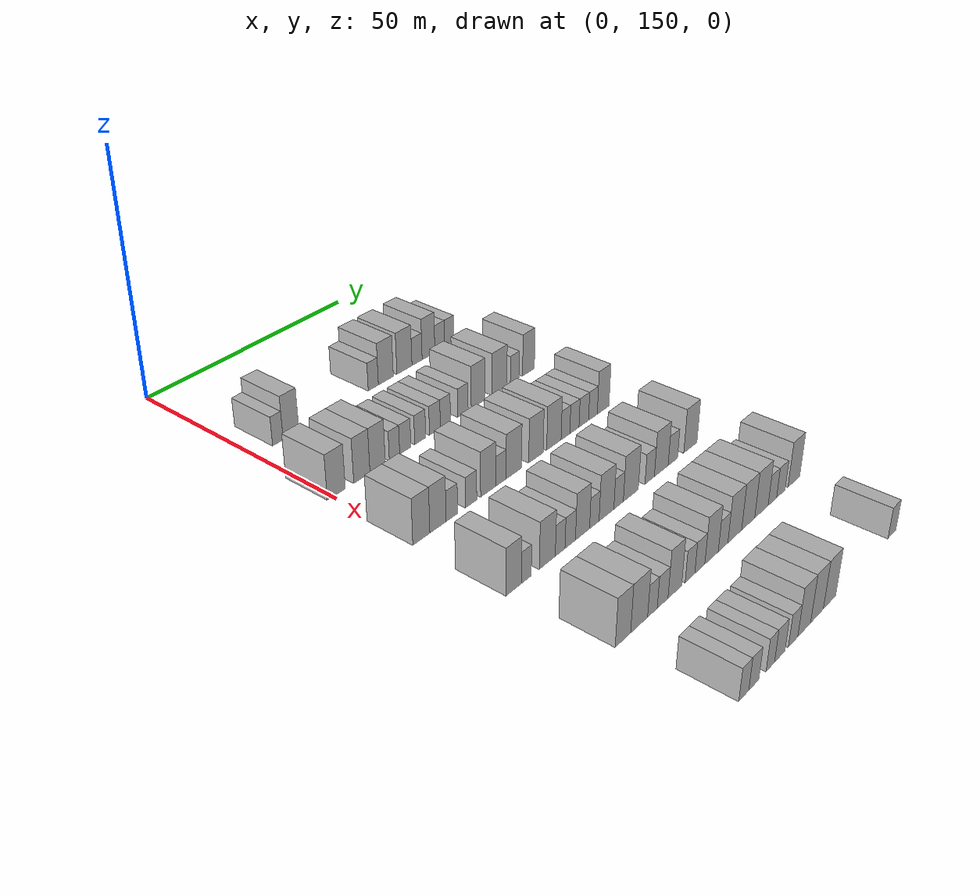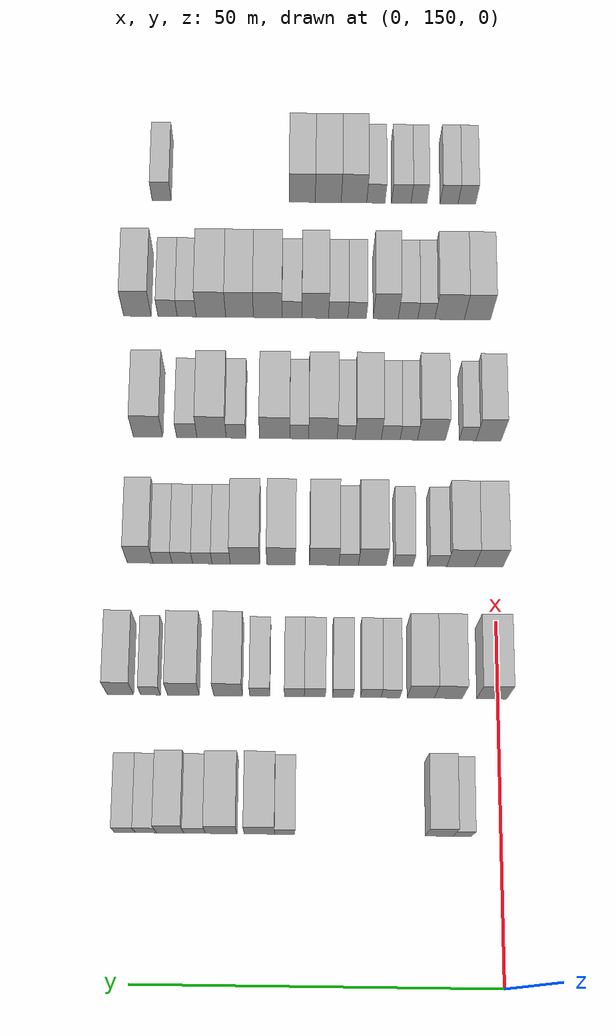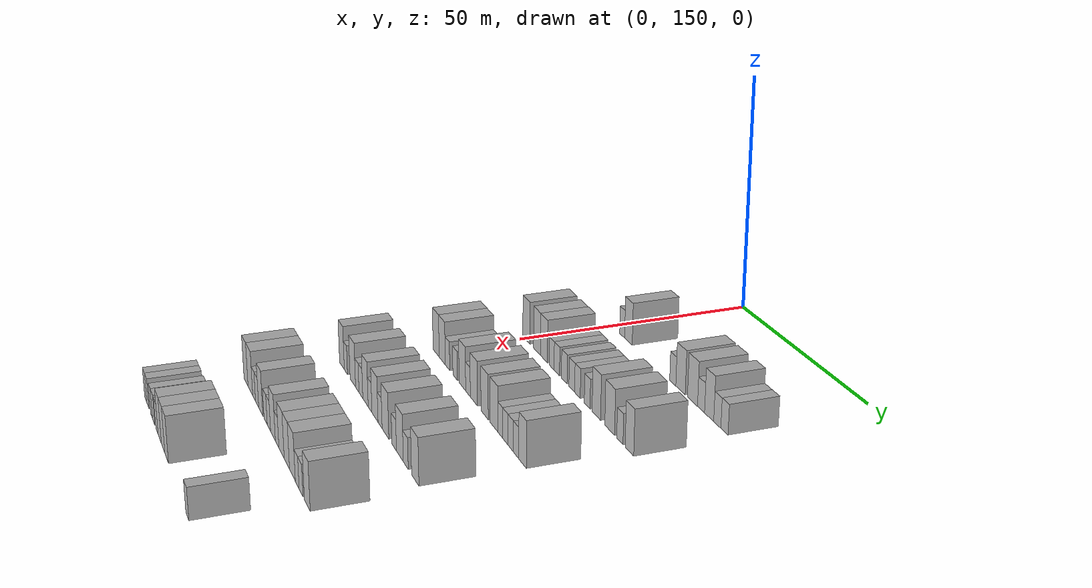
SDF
<sdf version="1.6">
 <world name="default">
  <model name="building_125">
   <static>1</static>
   <pose>25.0000 155.2886 0 0.000000 0.000000 0.000000</pose>
   <link name="link">
    <pose>0 0 3.00 0 0 0</pose>
    <collision name="collision"><geometry><box><size>10.0000 2.5124 6.0000</size></box></geometry></collision>
    <visual name="visual">
     <cast_shadows>0</cast_shadows>
     <geometry><box><size>10.0000 2.5124 6.0000</size></box></geometry>
     <material>
      <script>
       <uri>model://HANNAS_wall/materials/scripts</uri>
       <uri>model://HANNAS_wall/materials/textures</uri>
       <name>vrc/HANNAS_wall</name>
      </script>
     </material>
    </visual>
   </link>
  </model>
  <model name="building_126">
   <static>1</static>
   <pose>25.0000 158.4485 0 0.000000 0.000000 0.000000</pose>
   <link name="link">
    <pose>0 0 4.50 0 0 0</pose>
    <collision name="collision"><geometry><box><size>10.0000 3.8075 9.0000</size></box></geometry></collision>
    <visual name="visual">
     <cast_shadows>0</cast_shadows>
     <geometry><box><size>10.0000 3.8075 9.0000</size></box></geometry>
     <material>
      <script>
       <uri>model://HANNAS_wall/materials/scripts</uri>
       <uri>model://HANNAS_wall/materials/textures</uri>
       <name>vrc/HANNAS_wall</name>
      </script>
     </material>
    </visual>
   </link>
  </model>
  <model name="building_127">
   <static>1</static>
   <pose>25.0000 179.4781 0 0.000000 0.000000 0.000000</pose>
   <link name="link">
    <pose>0 0 3.00 0 0 0</pose>
    <collision name="collision"><geometry><box><size>10.0000 2.7506 6.0000</size></box></geometry></collision>
    <visual name="visual">
     <cast_shadows>0</cast_shadows>
     <geometry><box><size>10.0000 2.7506 6.0000</size></box></geometry>
     <material>
      <script>
       <uri>model://HANNAS_wall/materials/scripts</uri>
       <uri>model://HANNAS_wall/materials/textures</uri>
       <name>vrc/HANNAS_wall</name>
      </script>
     </material>
    </visual>
   </link>
  </model>
  <model name="building_128">
   <static>1</static>
   <pose>25.0000 182.9122 0 0.000000 0.000000 0.000000</pose>
   <link name="link">
    <pose>0 0 4.50 0 0 0</pose>
    <collision name="collision"><geometry><box><size>10.0000 4.1175 9.0000</size></box></geometry></collision>
    <visual name="visual">
     <cast_shadows>0</cast_shadows>
     <geometry><box><size>10.0000 4.1175 9.0000</size></box></geometry>
     <material>
      <script>
       <uri>model://HANNAS_wall/materials/scripts</uri>
       <uri>model://HANNAS_wall/materials/textures</uri>
       <name>vrc/HANNAS_wall</name>
      </script>
     </material>
    </visual>
   </link>
  </model>
  <model name="building_129">
   <static>1</static>
   <pose>25.0000 188.1085 0 0.000000 0.000000 0.000000</pose>
   <link name="link">
    <pose>0 0 4.50 0 0 0</pose>
    <collision name="collision"><geometry><box><size>10.0000 4.2751 9.0000</size></box></geometry></collision>
    <visual name="visual">
     <cast_shadows>0</cast_shadows>
     <geometry><box><size>10.0000 4.2751 9.0000</size></box></geometry>
     <material>
      <script>
       <uri>model://HANNAS_wall/materials/scripts</uri>
       <uri>model://HANNAS_wall/materials/textures</uri>
       <name>vrc/HANNAS_wall</name>
      </script>
     </material>
    </visual>
   </link>
  </model>
  <model name="building_130">
   <static>1</static>
   <pose>25.0000 191.7135 0 0.000000 0.000000 0.000000</pose>
   <link name="link">
    <pose>0 0 3.00 0 0 0</pose>
    <collision name="collision"><geometry><box><size>10.0000 2.9350 6.0000</size></box></geometry></collision>
    <visual name="visual">
     <cast_shadows>0</cast_shadows>
     <geometry><box><size>10.0000 2.9350 6.0000</size></box></geometry>
     <material>
      <script>
       <uri>model://HANNAS_wall/materials/scripts</uri>
       <uri>model://HANNAS_wall/materials/textures</uri>
       <name>vrc/HANNAS_wall</name>
      </script>
     </material>
    </visual>
   </link>
  </model>
  <model name="building_131">
   <static>1</static>
   <pose>25.0000 195.0549 0 0.000000 0.000000 0.000000</pose>
   <link name="link">
    <pose>0 0 4.50 0 0 0</pose>
    <collision name="collision"><geometry><box><size>10.0000 3.7477 9.0000</size></box></geometry></collision>
    <visual name="visual">
     <cast_shadows>0</cast_shadows>
     <geometry><box><size>10.0000 3.7477 9.0000</size></box></geometry>
     <material>
      <script>
       <uri>model://HANNAS_wall/materials/scripts</uri>
       <uri>model://HANNAS_wall/materials/textures</uri>
       <name>vrc/HANNAS_wall</name>
      </script>
     </material>
    </visual>
   </link>
  </model>
  <model name="building_132">
   <static>1</static>
   <pose>25.0000 198.3685 0 0.000000 0.000000 0.000000</pose>
   <link name="link">
    <pose>0 0 3.00 0 0 0</pose>
    <collision name="collision"><geometry><box><size>10.0000 2.8795 6.0000</size></box></geometry></collision>
    <visual name="visual">
     <cast_shadows>0</cast_shadows>
     <geometry><box><size>10.0000 2.8795 6.0000</size></box></geometry>
     <material>
      <script>
       <uri>model://HANNAS_wall/materials/scripts</uri>
       <uri>model://HANNAS_wall/materials/textures</uri>
       <name>vrc/HANNAS_wall</name>
      </script>
     </material>
    </visual>
   </link>
  </model>
  <model name="building_133">
   <static>1</static>
   <pose>25.0000 201.2318 0 0.000000 0.000000 0.000000</pose>
   <link name="link">
    <pose>0 0 3.00 0 0 0</pose>
    <collision name="collision"><geometry><box><size>10.0000 2.8471 6.0000</size></box></geometry></collision>
    <visual name="visual">
     <cast_shadows>0</cast_shadows>
     <geometry><box><size>10.0000 2.8471 6.0000</size></box></geometry>
     <material>
      <script>
       <uri>model://HANNAS_wall/materials/scripts</uri>
       <uri>model://HANNAS_wall/materials/textures</uri>
       <name>vrc/HANNAS_wall</name>
      </script>
     </material>
    </visual>
   </link>
  </model>
  <model name="building_292">
   <static>1</static>
   <pose>44.0000 150.8843 0 0.000000 0.000000 0.000000</pose>
   <link name="link">
    <pose>0 0 4.50 0 0 0</pose>
    <collision name="collision"><geometry><box><size>10.0000 4.1889 9.0000</size></box></geometry></collision>
    <visual name="visual">
     <cast_shadows>0</cast_shadows>
     <geometry><box><size>10.0000 4.1889 9.0000</size></box></geometry>
     <material>
      <script>
       <uri>model://HANNAS_wall/materials/scripts</uri>
       <uri>model://HANNAS_wall/materials/textures</uri>
       <name>vrc/HANNAS_wall</name>
      </script>
     </material>
    </visual>
   </link>
  </model>
  <model name="building_293">
   <static>1</static>
   <pose>44.0000 156.9351 0 0.000000 0.000000 0.000000</pose>
   <link name="link">
    <pose>0 0 4.50 0 0 0</pose>
    <collision name="collision"><geometry><box><size>10.0000 3.9126 9.0000</size></box></geometry></collision>
    <visual name="visual">
     <cast_shadows>0</cast_shadows>
     <geometry><box><size>10.0000 3.9126 9.0000</size></box></geometry>
     <material>
      <script>
       <uri>model://HANNAS_wall/materials/scripts</uri>
       <uri>model://HANNAS_wall/materials/textures</uri>
       <name>vrc/HANNAS_wall</name>
      </script>
     </material>
    </visual>
   </link>
  </model>
  <model name="building_294">
   <static>1</static>
   <pose>44.0000 160.7863 0 0.000000 0.000000 0.000000</pose>
   <link name="link">
    <pose>0 0 4.50 0 0 0</pose>
    <collision name="collision"><geometry><box><size>10.0000 3.7898 9.0000</size></box></geometry></collision>
    <visual name="visual">
     <cast_shadows>0</cast_shadows>
     <geometry><box><size>10.0000 3.7898 9.0000</size></box></geometry>
     <material>
      <script>
       <uri>model://HANNAS_wall/materials/scripts</uri>
       <uri>model://HANNAS_wall/materials/textures</uri>
       <name>vrc/HANNAS_wall</name>
      </script>
     </material>
    </visual>
   </link>
  </model>
  <model name="building_295">
   <static>1</static>
   <pose>44.0000 164.9924 0 0.000000 0.000000 0.000000</pose>
   <link name="link">
    <pose>0 0 3.00 0 0 0</pose>
    <collision name="collision"><geometry><box><size>10.0000 2.6225 6.0000</size></box></geometry></collision>
    <visual name="visual">
     <cast_shadows>0</cast_shadows>
     <geometry><box><size>10.0000 2.6225 6.0000</size></box></geometry>
     <material>
      <script>
       <uri>model://HANNAS_wall/materials/scripts</uri>
       <uri>model://HANNAS_wall/materials/textures</uri>
       <name>vrc/HANNAS_wall</name>
      </script>
     </material>
    </visual>
   </link>
  </model>
  <model name="building_296">
   <static>1</static>
   <pose>44.0000 167.7428 0 0.000000 0.000000 0.000000</pose>
   <link name="link">
    <pose>0 0 3.00 0 0 0</pose>
    <collision name="collision"><geometry><box><size>10.0000 2.8782 6.0000</size></box></geometry></collision>
    <visual name="visual">
     <cast_shadows>0</cast_shadows>
     <geometry><box><size>10.0000 2.8782 6.0000</size></box></geometry>
     <material>
      <script>
       <uri>model://HANNAS_wall/materials/scripts</uri>
       <uri>model://HANNAS_wall/materials/textures</uri>
       <name>vrc/HANNAS_wall</name>
      </script>
     </material>
    </visual>
   </link>
  </model>
  <model name="building_297">
   <static>1</static>
   <pose>44.0000 171.6284 0 0.000000 0.000000 0.000000</pose>
   <link name="link">
    <pose>0 0 3.00 0 0 0</pose>
    <collision name="collision"><geometry><box><size>10.0000 2.8931 6.0000</size></box></geometry></collision>
    <visual name="visual">
     <cast_shadows>0</cast_shadows>
     <geometry><box><size>10.0000 2.8931 6.0000</size></box></geometry>
     <material>
      <script>
       <uri>model://HANNAS_wall/materials/scripts</uri>
       <uri>model://HANNAS_wall/materials/textures</uri>
       <name>vrc/HANNAS_wall</name>
      </script>
     </material>
    </visual>
   </link>
  </model>
  <model name="building_298">
   <static>1</static>
   <pose>44.0000 175.5348 0 0.000000 0.000000 0.000000</pose>
   <link name="link">
    <pose>0 0 3.00 0 0 0</pose>
    <collision name="collision"><geometry><box><size>10.0000 2.9196 6.0000</size></box></geometry></collision>
    <visual name="visual">
     <cast_shadows>0</cast_shadows>
     <geometry><box><size>10.0000 2.9196 6.0000</size></box></geometry>
     <material>
      <script>
       <uri>model://HANNAS_wall/materials/scripts</uri>
       <uri>model://HANNAS_wall/materials/textures</uri>
       <name>vrc/HANNAS_wall</name>
      </script>
     </material>
    </visual>
   </link>
  </model>
  <model name="building_299">
   <static>1</static>
   <pose>44.0000 178.3773 0 0.000000 0.000000 0.000000</pose>
   <link name="link">
    <pose>0 0 3.00 0 0 0</pose>
    <collision name="collision"><geometry><box><size>10.0000 2.7654 6.0000</size></box></geometry></collision>
    <visual name="visual">
     <cast_shadows>0</cast_shadows>
     <geometry><box><size>10.0000 2.7654 6.0000</size></box></geometry>
     <material>
      <script>
       <uri>model://HANNAS_wall/materials/scripts</uri>
       <uri>model://HANNAS_wall/materials/textures</uri>
       <name>vrc/HANNAS_wall</name>
      </script>
     </material>
    </visual>
   </link>
  </model>
  <model name="building_300">
   <static>1</static>
   <pose>44.0000 183.1663 0 0.000000 0.000000 0.000000</pose>
   <link name="link">
    <pose>0 0 3.00 0 0 0</pose>
    <collision name="collision"><geometry><box><size>10.0000 2.8126 6.0000</size></box></geometry></collision>
    <visual name="visual">
     <cast_shadows>0</cast_shadows>
     <geometry><box><size>10.0000 2.8126 6.0000</size></box></geometry>
     <material>
      <script>
       <uri>model://HANNAS_wall/materials/scripts</uri>
       <uri>model://HANNAS_wall/materials/textures</uri>
       <name>vrc/HANNAS_wall</name>
      </script>
     </material>
    </visual>
   </link>
  </model>
  <model name="building_301">
   <static>1</static>
   <pose>44.0000 187.5790 0 0.000000 0.000000 0.000000</pose>
   <link name="link">
    <pose>0 0 4.50 0 0 0</pose>
    <collision name="collision"><geometry><box><size>10.0000 4.0128 9.0000</size></box></geometry></collision>
    <visual name="visual">
     <cast_shadows>0</cast_shadows>
     <geometry><box><size>10.0000 4.0128 9.0000</size></box></geometry>
     <material>
      <script>
       <uri>model://HANNAS_wall/materials/scripts</uri>
       <uri>model://HANNAS_wall/materials/textures</uri>
       <name>vrc/HANNAS_wall</name>
      </script>
     </material>
    </visual>
   </link>
  </model>
  <model name="building_302">
   <static>1</static>
   <pose>44.0000 193.7998 0 0.000000 0.000000 0.000000</pose>
   <link name="link">
    <pose>0 0 4.50 0 0 0</pose>
    <collision name="collision"><geometry><box><size>10.0000 4.4289 9.0000</size></box></geometry></collision>
    <visual name="visual">
     <cast_shadows>0</cast_shadows>
     <geometry><box><size>10.0000 4.4289 9.0000</size></box></geometry>
     <material>
      <script>
       <uri>model://HANNAS_wall/materials/scripts</uri>
       <uri>model://HANNAS_wall/materials/textures</uri>
       <name>vrc/HANNAS_wall</name>
      </script>
     </material>
    </visual>
   </link>
  </model>
  <model name="building_303">
   <static>1</static>
   <pose>44.0000 198.3880 0 0.000000 0.000000 0.000000</pose>
   <link name="link">
    <pose>0 0 3.00 0 0 0</pose>
    <collision name="collision"><geometry><box><size>10.0000 2.7474 6.0000</size></box></geometry></collision>
    <visual name="visual">
     <cast_shadows>0</cast_shadows>
     <geometry><box><size>10.0000 2.7474 6.0000</size></box></geometry>
     <material>
      <script>
       <uri>model://HANNAS_wall/materials/scripts</uri>
       <uri>model://HANNAS_wall/materials/textures</uri>
       <name>vrc/HANNAS_wall</name>
      </script>
     </material>
    </visual>
   </link>
  </model>
  <model name="building_304">
   <static>1</static>
   <pose>44.0000 202.6028 0 0.000000 0.000000 0.000000</pose>
   <link name="link">
    <pose>0 0 4.50 0 0 0</pose>
    <collision name="collision"><geometry><box><size>10.0000 3.6822 9.0000</size></box></geometry></collision>
    <visual name="visual">
     <cast_shadows>0</cast_shadows>
     <geometry><box><size>10.0000 3.6822 9.0000</size></box></geometry>
     <material>
      <script>
       <uri>model://HANNAS_wall/materials/scripts</uri>
       <uri>model://HANNAS_wall/materials/textures</uri>
       <name>vrc/HANNAS_wall</name>
      </script>
     </material>
    </visual>
   </link>
  </model>
  <model name="building_465">
   <static>1</static>
   <pose>63.0000 150.8808 0 0.000000 0.000000 0.000000</pose>
   <link name="link">
    <pose>0 0 4.50 0 0 0</pose>
    <collision name="collision"><geometry><box><size>10.0000 4.0199 9.0000</size></box></geometry></collision>
    <visual name="visual">
     <cast_shadows>0</cast_shadows>
     <geometry><box><size>10.0000 4.0199 9.0000</size></box></geometry>
     <material>
      <script>
       <uri>model://HANNAS_wall/materials/scripts</uri>
       <uri>model://HANNAS_wall/materials/textures</uri>
       <name>vrc/HANNAS_wall</name>
      </script>
     </material>
    </visual>
   </link>
  </model>
  <model name="building_466">
   <static>1</static>
   <pose>63.0000 154.8594 0 0.000000 0.000000 0.000000</pose>
   <link name="link">
    <pose>0 0 4.50 0 0 0</pose>
    <collision name="collision"><geometry><box><size>10.0000 3.9374 9.0000</size></box></geometry></collision>
    <visual name="visual">
     <cast_shadows>0</cast_shadows>
     <geometry><box><size>10.0000 3.9374 9.0000</size></box></geometry>
     <material>
      <script>
       <uri>model://HANNAS_wall/materials/scripts</uri>
       <uri>model://HANNAS_wall/materials/textures</uri>
       <name>vrc/HANNAS_wall</name>
      </script>
     </material>
    </visual>
   </link>
  </model>
  <model name="building_467">
   <static>1</static>
   <pose>63.0000 158.2430 0 0.000000 0.000000 0.000000</pose>
   <link name="link">
    <pose>0 0 3.00 0 0 0</pose>
    <collision name="collision"><geometry><box><size>10.0000 2.8297 6.0000</size></box></geometry></collision>
    <visual name="visual">
     <cast_shadows>0</cast_shadows>
     <geometry><box><size>10.0000 2.8297 6.0000</size></box></geometry>
     <material>
      <script>
       <uri>model://HANNAS_wall/materials/scripts</uri>
       <uri>model://HANNAS_wall/materials/textures</uri>
       <name>vrc/HANNAS_wall</name>
      </script>
     </material>
    </visual>
   </link>
  </model>
  <model name="building_468">
   <static>1</static>
   <pose>63.0000 163.0838 0 0.000000 0.000000 0.000000</pose>
   <link name="link">
    <pose>0 0 3.00 0 0 0</pose>
    <collision name="collision"><geometry><box><size>10.0000 2.8520 6.0000</size></box></geometry></collision>
    <visual name="visual">
     <cast_shadows>0</cast_shadows>
     <geometry><box><size>10.0000 2.8520 6.0000</size></box></geometry>
     <material>
      <script>
       <uri>model://HANNAS_wall/materials/scripts</uri>
       <uri>model://HANNAS_wall/materials/textures</uri>
       <name>vrc/HANNAS_wall</name>
      </script>
     </material>
    </visual>
   </link>
  </model>
  <model name="building_469">
   <static>1</static>
   <pose>63.0000 167.4831 0 0.000000 0.000000 0.000000</pose>
   <link name="link">
    <pose>0 0 4.50 0 0 0</pose>
    <collision name="collision"><geometry><box><size>10.0000 3.9466 9.0000</size></box></geometry></collision>
    <visual name="visual">
     <cast_shadows>0</cast_shadows>
     <geometry><box><size>10.0000 3.9466 9.0000</size></box></geometry>
     <material>
      <script>
       <uri>model://HANNAS_wall/materials/scripts</uri>
       <uri>model://HANNAS_wall/materials/textures</uri>
       <name>vrc/HANNAS_wall</name>
      </script>
     </material>
    </visual>
   </link>
  </model>
  <model name="building_470">
   <static>1</static>
   <pose>63.0000 170.8446 0 0.000000 0.000000 0.000000</pose>
   <link name="link">
    <pose>0 0 3.00 0 0 0</pose>
    <collision name="collision"><geometry><box><size>10.0000 2.7764 6.0000</size></box></geometry></collision>
    <visual name="visual">
     <cast_shadows>0</cast_shadows>
     <geometry><box><size>10.0000 2.7764 6.0000</size></box></geometry>
     <material>
      <script>
       <uri>model://HANNAS_wall/materials/scripts</uri>
       <uri>model://HANNAS_wall/materials/textures</uri>
       <name>vrc/HANNAS_wall</name>
      </script>
     </material>
    </visual>
   </link>
  </model>
  <model name="building_471">
   <static>1</static>
   <pose>63.0000 174.3244 0 0.000000 0.000000 0.000000</pose>
   <link name="link">
    <pose>0 0 4.50 0 0 0</pose>
    <collision name="collision"><geometry><box><size>10.0000 4.1831 9.0000</size></box></geometry></collision>
    <visual name="visual">
     <cast_shadows>0</cast_shadows>
     <geometry><box><size>10.0000 4.1831 9.0000</size></box></geometry>
     <material>
      <script>
       <uri>model://HANNAS_wall/materials/scripts</uri>
       <uri>model://HANNAS_wall/materials/textures</uri>
       <name>vrc/HANNAS_wall</name>
      </script>
     </material>
    </visual>
   </link>
  </model>
  <model name="building_472">
   <static>1</static>
   <pose>63.0000 180.4540 0 0.000000 0.000000 0.000000</pose>
   <link name="link">
    <pose>0 0 4.50 0 0 0</pose>
    <collision name="collision"><geometry><box><size>10.0000 4.0761 9.0000</size></box></geometry></collision>
    <visual name="visual">
     <cast_shadows>0</cast_shadows>
     <geometry><box><size>10.0000 4.0761 9.0000</size></box></geometry>
     <material>
      <script>
       <uri>model://HANNAS_wall/materials/scripts</uri>
       <uri>model://HANNAS_wall/materials/textures</uri>
       <name>vrc/HANNAS_wall</name>
      </script>
     </material>
    </visual>
   </link>
  </model>
  <model name="building_473">
   <static>1</static>
   <pose>63.0000 185.5911 0 0.000000 0.000000 0.000000</pose>
   <link name="link">
    <pose>0 0 4.50 0 0 0</pose>
    <collision name="collision"><geometry><box><size>10.0000 4.1981 9.0000</size></box></geometry></collision>
    <visual name="visual">
     <cast_shadows>0</cast_shadows>
     <geometry><box><size>10.0000 4.1981 9.0000</size></box></geometry>
     <material>
      <script>
       <uri>model://HANNAS_wall/materials/scripts</uri>
       <uri>model://HANNAS_wall/materials/textures</uri>
       <name>vrc/HANNAS_wall</name>
      </script>
     </material>
    </visual>
   </link>
  </model>
  <model name="building_474">
   <static>1</static>
   <pose>63.0000 188.9904 0 0.000000 0.000000 0.000000</pose>
   <link name="link">
    <pose>0 0 3.00 0 0 0</pose>
    <collision name="collision"><geometry><box><size>10.0000 2.6004 6.0000</size></box></geometry></collision>
    <visual name="visual">
     <cast_shadows>0</cast_shadows>
     <geometry><box><size>10.0000 2.6004 6.0000</size></box></geometry>
     <material>
      <script>
       <uri>model://HANNAS_wall/materials/scripts</uri>
       <uri>model://HANNAS_wall/materials/textures</uri>
       <name>vrc/HANNAS_wall</name>
      </script>
     </material>
    </visual>
   </link>
  </model>
  <model name="building_475">
   <static>1</static>
   <pose>63.0000 191.6744 0 0.000000 0.000000 0.000000</pose>
   <link name="link">
    <pose>0 0 3.00 0 0 0</pose>
    <collision name="collision"><geometry><box><size>10.0000 2.7675 6.0000</size></box></geometry></collision>
    <visual name="visual">
     <cast_shadows>0</cast_shadows>
     <geometry><box><size>10.0000 2.7675 6.0000</size></box></geometry>
     <material>
      <script>
       <uri>model://HANNAS_wall/materials/scripts</uri>
       <uri>model://HANNAS_wall/materials/textures</uri>
       <name>vrc/HANNAS_wall</name>
      </script>
     </material>
    </visual>
   </link>
  </model>
  <model name="building_476">
   <static>1</static>
   <pose>63.0000 194.5144 0 0.000000 0.000000 0.000000</pose>
   <link name="link">
    <pose>0 0 3.00 0 0 0</pose>
    <collision name="collision"><geometry><box><size>10.0000 2.9126 6.0000</size></box></geometry></collision>
    <visual name="visual">
     <cast_shadows>0</cast_shadows>
     <geometry><box><size>10.0000 2.9126 6.0000</size></box></geometry>
     <material>
      <script>
       <uri>model://HANNAS_wall/materials/scripts</uri>
       <uri>model://HANNAS_wall/materials/textures</uri>
       <name>vrc/HANNAS_wall</name>
      </script>
     </material>
    </visual>
   </link>
  </model>
  <model name="building_477">
   <static>1</static>
   <pose>63.0000 197.3255 0 0.000000 0.000000 0.000000</pose>
   <link name="link">
    <pose>0 0 3.00 0 0 0</pose>
    <collision name="collision"><geometry><box><size>10.0000 2.7097 6.0000</size></box></geometry></collision>
    <visual name="visual">
     <cast_shadows>0</cast_shadows>
     <geometry><box><size>10.0000 2.7097 6.0000</size></box></geometry>
     <material>
      <script>
       <uri>model://HANNAS_wall/materials/scripts</uri>
       <uri>model://HANNAS_wall/materials/textures</uri>
       <name>vrc/HANNAS_wall</name>
      </script>
     </material>
    </visual>
   </link>
  </model>
  <model name="building_478">
   <static>1</static>
   <pose>63.0000 200.5234 0 0.000000 0.000000 0.000000</pose>
   <link name="link">
    <pose>0 0 4.50 0 0 0</pose>
    <collision name="collision"><geometry><box><size>10.0000 3.6861 9.0000</size></box></geometry></collision>
    <visual name="visual">
     <cast_shadows>0</cast_shadows>
     <geometry><box><size>10.0000 3.6861 9.0000</size></box></geometry>
     <material>
      <script>
       <uri>model://HANNAS_wall/materials/scripts</uri>
       <uri>model://HANNAS_wall/materials/textures</uri>
       <name>vrc/HANNAS_wall</name>
      </script>
     </material>
    </visual>
   </link>
  </model>
  <model name="building_648">
   <static>1</static>
   <pose>82.0000 150.5078 0 0.000000 0.000000 0.000000</pose>
   <link name="link">
    <pose>0 0 4.50 0 0 0</pose>
    <collision name="collision"><geometry><box><size>10.0000 3.6606 9.0000</size></box></geometry></collision>
    <visual name="visual">
     <cast_shadows>0</cast_shadows>
     <geometry><box><size>10.0000 3.6606 9.0000</size></box></geometry>
     <material>
      <script>
       <uri>model://HANNAS_wall/materials/scripts</uri>
       <uri>model://HANNAS_wall/materials/textures</uri>
       <name>vrc/HANNAS_wall</name>
      </script>
     </material>
    </visual>
   </link>
  </model>
  <model name="building_649">
   <static>1</static>
   <pose>82.0000 153.5602 0 0.000000 0.000000 0.000000</pose>
   <link name="link">
    <pose>0 0 3.00 0 0 0</pose>
    <collision name="collision"><geometry><box><size>10.0000 2.4443 6.0000</size></box></geometry></collision>
    <visual name="visual">
     <cast_shadows>0</cast_shadows>
     <geometry><box><size>10.0000 2.4443 6.0000</size></box></geometry>
     <material>
      <script>
       <uri>model://HANNAS_wall/materials/scripts</uri>
       <uri>model://HANNAS_wall/materials/textures</uri>
       <name>vrc/HANNAS_wall</name>
      </script>
     </material>
    </visual>
   </link>
  </model>
  <model name="building_650">
   <static>1</static>
   <pose>82.0000 158.8194 0 0.000000 0.000000 0.000000</pose>
   <link name="link">
    <pose>0 0 4.50 0 0 0</pose>
    <collision name="collision"><geometry><box><size>10.0000 4.0742 9.0000</size></box></geometry></collision>
    <visual name="visual">
     <cast_shadows>0</cast_shadows>
     <geometry><box><size>10.0000 4.0742 9.0000</size></box></geometry>
     <material>
      <script>
       <uri>model://HANNAS_wall/materials/scripts</uri>
       <uri>model://HANNAS_wall/materials/textures</uri>
       <name>vrc/HANNAS_wall</name>
      </script>
     </material>
    </visual>
   </link>
  </model>
  <model name="building_651">
   <static>1</static>
   <pose>82.0000 162.1157 0 0.000000 0.000000 0.000000</pose>
   <link name="link">
    <pose>0 0 3.00 0 0 0</pose>
    <collision name="collision"><geometry><box><size>10.0000 2.5183 6.0000</size></box></geometry></collision>
    <visual name="visual">
     <cast_shadows>0</cast_shadows>
     <geometry><box><size>10.0000 2.5183 6.0000</size></box></geometry>
     <material>
      <script>
       <uri>model://HANNAS_wall/materials/scripts</uri>
       <uri>model://HANNAS_wall/materials/textures</uri>
       <name>vrc/HANNAS_wall</name>
      </script>
     </material>
    </visual>
   </link>
  </model>
  <model name="building_652">
   <static>1</static>
   <pose>82.0000 164.7544 0 0.000000 0.000000 0.000000</pose>
   <link name="link">
    <pose>0 0 3.00 0 0 0</pose>
    <collision name="collision"><geometry><box><size>10.0000 2.7592 6.0000</size></box></geometry></collision>
    <visual name="visual">
     <cast_shadows>0</cast_shadows>
     <geometry><box><size>10.0000 2.7592 6.0000</size></box></geometry>
     <material>
      <script>
       <uri>model://HANNAS_wall/materials/scripts</uri>
       <uri>model://HANNAS_wall/materials/textures</uri>
       <name>vrc/HANNAS_wall</name>
      </script>
     </material>
    </visual>
   </link>
  </model>
  <model name="building_653">
   <static>1</static>
   <pose>82.0000 168.0363 0 0.000000 0.000000 0.000000</pose>
   <link name="link">
    <pose>0 0 4.50 0 0 0</pose>
    <collision name="collision"><geometry><box><size>10.0000 3.8046 9.0000</size></box></geometry></collision>
    <visual name="visual">
     <cast_shadows>0</cast_shadows>
     <geometry><box><size>10.0000 3.8046 9.0000</size></box></geometry>
     <material>
      <script>
       <uri>model://HANNAS_wall/materials/scripts</uri>
       <uri>model://HANNAS_wall/materials/textures</uri>
       <name>vrc/HANNAS_wall</name>
      </script>
     </material>
    </visual>
   </link>
  </model>
  <model name="building_654">
   <static>1</static>
   <pose>82.0000 171.2433 0 0.000000 0.000000 0.000000</pose>
   <link name="link">
    <pose>0 0 3.00 0 0 0</pose>
    <collision name="collision"><geometry><box><size>10.0000 2.6094 6.0000</size></box></geometry></collision>
    <visual name="visual">
     <cast_shadows>0</cast_shadows>
     <geometry><box><size>10.0000 2.6094 6.0000</size></box></geometry>
     <material>
      <script>
       <uri>model://HANNAS_wall/materials/scripts</uri>
       <uri>model://HANNAS_wall/materials/textures</uri>
       <name>vrc/HANNAS_wall</name>
      </script>
     </material>
    </visual>
   </link>
  </model>
  <model name="building_655">
   <static>1</static>
   <pose>82.0000 174.6304 0 0.000000 0.000000 0.000000</pose>
   <link name="link">
    <pose>0 0 4.50 0 0 0</pose>
    <collision name="collision"><geometry><box><size>10.0000 4.1648 9.0000</size></box></geometry></collision>
    <visual name="visual">
     <cast_shadows>0</cast_shadows>
     <geometry><box><size>10.0000 4.1648 9.0000</size></box></geometry>
     <material>
      <script>
       <uri>model://HANNAS_wall/materials/scripts</uri>
       <uri>model://HANNAS_wall/materials/textures</uri>
       <name>vrc/HANNAS_wall</name>
      </script>
     </material>
    </visual>
   </link>
  </model>
  <model name="building_656">
   <static>1</static>
   <pose>82.0000 178.0759 0 0.000000 0.000000 0.000000</pose>
   <link name="link">
    <pose>0 0 3.00 0 0 0</pose>
    <collision name="collision"><geometry><box><size>10.0000 2.7262 6.0000</size></box></geometry></collision>
    <visual name="visual">
     <cast_shadows>0</cast_shadows>
     <geometry><box><size>10.0000 2.7262 6.0000</size></box></geometry>
     <material>
      <script>
       <uri>model://HANNAS_wall/materials/scripts</uri>
       <uri>model://HANNAS_wall/materials/textures</uri>
       <name>vrc/HANNAS_wall</name>
      </script>
     </material>
    </visual>
   </link>
  </model>
  <model name="building_657">
   <static>1</static>
   <pose>82.0000 181.6300 0 0.000000 0.000000 0.000000</pose>
   <link name="link">
    <pose>0 0 4.50 0 0 0</pose>
    <collision name="collision"><geometry><box><size>10.0000 4.3820 9.0000</size></box></geometry></collision>
    <visual name="visual">
     <cast_shadows>0</cast_shadows>
     <geometry><box><size>10.0000 4.3820 9.0000</size></box></geometry>
     <material>
      <script>
       <uri>model://HANNAS_wall/materials/scripts</uri>
       <uri>model://HANNAS_wall/materials/textures</uri>
       <name>vrc/HANNAS_wall</name>
      </script>
     </material>
    </visual>
   </link>
  </model>
  <model name="building_658">
   <static>1</static>
   <pose>82.0000 187.2487 0 0.000000 0.000000 0.000000</pose>
   <link name="link">
    <pose>0 0 3.00 0 0 0</pose>
    <collision name="collision"><geometry><box><size>10.0000 2.8555 6.0000</size></box></geometry></collision>
    <visual name="visual">
     <cast_shadows>0</cast_shadows>
     <geometry><box><size>10.0000 2.8555 6.0000</size></box></geometry>
     <material>
      <script>
       <uri>model://HANNAS_wall/materials/scripts</uri>
       <uri>model://HANNAS_wall/materials/textures</uri>
       <name>vrc/HANNAS_wall</name>
      </script>
     </material>
    </visual>
   </link>
  </model>
  <model name="building_659">
   <static>1</static>
   <pose>82.0000 190.8111 0 0.000000 0.000000 0.000000</pose>
   <link name="link">
    <pose>0 0 4.50 0 0 0</pose>
    <collision name="collision"><geometry><box><size>10.0000 4.2693 9.0000</size></box></geometry></collision>
    <visual name="visual">
     <cast_shadows>0</cast_shadows>
     <geometry><box><size>10.0000 4.2693 9.0000</size></box></geometry>
     <material>
      <script>
       <uri>model://HANNAS_wall/materials/scripts</uri>
       <uri>model://HANNAS_wall/materials/textures</uri>
       <name>vrc/HANNAS_wall</name>
      </script>
     </material>
    </visual>
   </link>
  </model>
  <model name="building_660">
   <static>1</static>
   <pose>82.0000 194.4278 0 0.000000 0.000000 0.000000</pose>
   <link name="link">
    <pose>0 0 3.00 0 0 0</pose>
    <collision name="collision"><geometry><box><size>10.0000 2.9641 6.0000</size></box></geometry></collision>
    <visual name="visual">
     <cast_shadows>0</cast_shadows>
     <geometry><box><size>10.0000 2.9641 6.0000</size></box></geometry>
     <material>
      <script>
       <uri>model://HANNAS_wall/materials/scripts</uri>
       <uri>model://HANNAS_wall/materials/textures</uri>
       <name>vrc/HANNAS_wall</name>
      </script>
     </material>
    </visual>
   </link>
  </model>
  <model name="building_661">
   <static>1</static>
   <pose>82.0000 200.0559 0 0.000000 0.000000 0.000000</pose>
   <link name="link">
    <pose>0 0 4.50 0 0 0</pose>
    <collision name="collision"><geometry><box><size>10.0000 4.2922 9.0000</size></box></geometry></collision>
    <visual name="visual">
     <cast_shadows>0</cast_shadows>
     <geometry><box><size>10.0000 4.2922 9.0000</size></box></geometry>
     <material>
      <script>
       <uri>model://HANNAS_wall/materials/scripts</uri>
       <uri>model://HANNAS_wall/materials/textures</uri>
       <name>vrc/HANNAS_wall</name>
      </script>
     </material>
    </visual>
   </link>
  </model>
  <model name="building_814">
   <static>1</static>
   <pose>101.0000 151.7543 0 0.000000 0.000000 0.000000</pose>
   <link name="link">
    <pose>0 0 4.50 0 0 0</pose>
    <collision name="collision"><geometry><box><size>10.0000 3.8692 9.0000</size></box></geometry></collision>
    <visual name="visual">
     <cast_shadows>0</cast_shadows>
     <geometry><box><size>10.0000 3.8692 9.0000</size></box></geometry>
     <material>
      <script>
       <uri>model://HANNAS_wall/materials/scripts</uri>
       <uri>model://HANNAS_wall/materials/textures</uri>
       <name>vrc/HANNAS_wall</name>
      </script>
     </material>
    </visual>
   </link>
  </model>
  <model name="building_815">
   <static>1</static>
   <pose>101.0000 155.8860 0 0.000000 0.000000 0.000000</pose>
   <link name="link">
    <pose>0 0 4.50 0 0 0</pose>
    <collision name="collision"><geometry><box><size>10.0000 4.3941 9.0000</size></box></geometry></collision>
    <visual name="visual">
     <cast_shadows>0</cast_shadows>
     <geometry><box><size>10.0000 4.3941 9.0000</size></box></geometry>
     <material>
      <script>
       <uri>model://HANNAS_wall/materials/scripts</uri>
       <uri>model://HANNAS_wall/materials/textures</uri>
       <name>vrc/HANNAS_wall</name>
      </script>
     </material>
    </visual>
   </link>
  </model>
  <model name="building_816">
   <static>1</static>
   <pose>101.0000 159.3558 0 0.000000 0.000000 0.000000</pose>
   <link name="link">
    <pose>0 0 3.00 0 0 0</pose>
    <collision name="collision"><geometry><box><size>10.0000 2.5454 6.0000</size></box></geometry></collision>
    <visual name="visual">
     <cast_shadows>0</cast_shadows>
     <geometry><box><size>10.0000 2.5454 6.0000</size></box></geometry>
     <material>
      <script>
       <uri>model://HANNAS_wall/materials/scripts</uri>
       <uri>model://HANNAS_wall/materials/textures</uri>
       <name>vrc/HANNAS_wall</name>
      </script>
     </material>
    </visual>
   </link>
  </model>
  <model name="building_817">
   <static>1</static>
   <pose>101.0000 162.0757 0 0.000000 0.000000 0.000000</pose>
   <link name="link">
    <pose>0 0 3.00 0 0 0</pose>
    <collision name="collision"><geometry><box><size>10.0000 2.8944 6.0000</size></box></geometry></collision>
    <visual name="visual">
     <cast_shadows>0</cast_shadows>
     <geometry><box><size>10.0000 2.8944 6.0000</size></box></geometry>
     <material>
      <script>
       <uri>model://HANNAS_wall/materials/scripts</uri>
       <uri>model://HANNAS_wall/materials/textures</uri>
       <name>vrc/HANNAS_wall</name>
      </script>
     </material>
    </visual>
   </link>
  </model>
  <model name="building_818">
   <static>1</static>
   <pose>101.0000 165.3984 0 0.000000 0.000000 0.000000</pose>
   <link name="link">
    <pose>0 0 4.50 0 0 0</pose>
    <collision name="collision"><geometry><box><size>10.0000 3.7510 9.0000</size></box></geometry></collision>
    <visual name="visual">
     <cast_shadows>0</cast_shadows>
     <geometry><box><size>10.0000 3.7510 9.0000</size></box></geometry>
     <material>
      <script>
       <uri>model://HANNAS_wall/materials/scripts</uri>
       <uri>model://HANNAS_wall/materials/textures</uri>
       <name>vrc/HANNAS_wall</name>
      </script>
     </material>
    </visual>
   </link>
  </model>
  <model name="building_819">
   <static>1</static>
   <pose>101.0000 169.6394 0 0.000000 0.000000 0.000000</pose>
   <link name="link">
    <pose>0 0 3.00 0 0 0</pose>
    <collision name="collision"><geometry><box><size>10.0000 2.7311 6.0000</size></box></geometry></collision>
    <visual name="visual">
     <cast_shadows>0</cast_shadows>
     <geometry><box><size>10.0000 2.7311 6.0000</size></box></geometry>
     <material>
      <script>
       <uri>model://HANNAS_wall/materials/scripts</uri>
       <uri>model://HANNAS_wall/materials/textures</uri>
       <name>vrc/HANNAS_wall</name>
      </script>
     </material>
    </visual>
   </link>
  </model>
  <model name="building_820">
   <static>1</static>
   <pose>101.0000 172.4574 0 0.000000 0.000000 0.000000</pose>
   <link name="link">
    <pose>0 0 3.00 0 0 0</pose>
    <collision name="collision"><geometry><box><size>10.0000 2.9048 6.0000</size></box></geometry></collision>
    <visual name="visual">
     <cast_shadows>0</cast_shadows>
     <geometry><box><size>10.0000 2.9048 6.0000</size></box></geometry>
     <material>
      <script>
       <uri>model://HANNAS_wall/materials/scripts</uri>
       <uri>model://HANNAS_wall/materials/textures</uri>
       <name>vrc/HANNAS_wall</name>
      </script>
     </material>
    </visual>
   </link>
  </model>
  <model name="building_821">
   <static>1</static>
   <pose>101.0000 175.8963 0 0.000000 0.000000 0.000000</pose>
   <link name="link">
    <pose>0 0 4.50 0 0 0</pose>
    <collision name="collision"><geometry><box><size>10.0000 3.9731 9.0000</size></box></geometry></collision>
    <visual name="visual">
     <cast_shadows>0</cast_shadows>
     <geometry><box><size>10.0000 3.9731 9.0000</size></box></geometry>
     <material>
      <script>
       <uri>model://HANNAS_wall/materials/scripts</uri>
       <uri>model://HANNAS_wall/materials/textures</uri>
       <name>vrc/HANNAS_wall</name>
      </script>
     </material>
    </visual>
   </link>
  </model>
  <model name="building_822">
   <static>1</static>
   <pose>101.0000 179.3335 0 0.000000 0.000000 0.000000</pose>
   <link name="link">
    <pose>0 0 3.00 0 0 0</pose>
    <collision name="collision"><geometry><box><size>10.0000 2.9012 6.0000</size></box></geometry></collision>
    <visual name="visual">
     <cast_shadows>0</cast_shadows>
     <geometry><box><size>10.0000 2.9012 6.0000</size></box></geometry>
     <material>
      <script>
       <uri>model://HANNAS_wall/materials/scripts</uri>
       <uri>model://HANNAS_wall/materials/textures</uri>
       <name>vrc/HANNAS_wall</name>
      </script>
     </material>
    </visual>
   </link>
  </model>
  <model name="building_823">
   <static>1</static>
   <pose>101.0000 182.9118 0 0.000000 0.000000 0.000000</pose>
   <link name="link">
    <pose>0 0 4.50 0 0 0</pose>
    <collision name="collision"><geometry><box><size>10.0000 4.2555 9.0000</size></box></geometry></collision>
    <visual name="visual">
     <cast_shadows>0</cast_shadows>
     <geometry><box><size>10.0000 4.2555 9.0000</size></box></geometry>
     <material>
      <script>
       <uri>model://HANNAS_wall/materials/scripts</uri>
       <uri>model://HANNAS_wall/materials/textures</uri>
       <name>vrc/HANNAS_wall</name>
      </script>
     </material>
    </visual>
   </link>
  </model>
  <model name="building_824">
   <static>1</static>
   <pose>101.0000 187.1099 0 0.000000 0.000000 0.000000</pose>
   <link name="link">
    <pose>0 0 4.50 0 0 0</pose>
    <collision name="collision"><geometry><box><size>10.0000 4.1407 9.0000</size></box></geometry></collision>
    <visual name="visual">
     <cast_shadows>0</cast_shadows>
     <geometry><box><size>10.0000 4.1407 9.0000</size></box></geometry>
     <material>
      <script>
       <uri>model://HANNAS_wall/materials/scripts</uri>
       <uri>model://HANNAS_wall/materials/textures</uri>
       <name>vrc/HANNAS_wall</name>
      </script>
     </material>
    </visual>
   </link>
  </model>
  <model name="building_825">
   <static>1</static>
   <pose>101.0000 191.3740 0 0.000000 0.000000 0.000000</pose>
   <link name="link">
    <pose>0 0 4.50 0 0 0</pose>
    <collision name="collision"><geometry><box><size>10.0000 4.3873 9.0000</size></box></geometry></collision>
    <visual name="visual">
     <cast_shadows>0</cast_shadows>
     <geometry><box><size>10.0000 4.3873 9.0000</size></box></geometry>
     <material>
      <script>
       <uri>model://HANNAS_wall/materials/scripts</uri>
       <uri>model://HANNAS_wall/materials/textures</uri>
       <name>vrc/HANNAS_wall</name>
      </script>
     </material>
    </visual>
   </link>
  </model>
  <model name="building_826">
   <static>1</static>
   <pose>101.0000 194.9800 0 0.000000 0.000000 0.000000</pose>
   <link name="link">
    <pose>0 0 3.00 0 0 0</pose>
    <collision name="collision"><geometry><box><size>10.0000 2.8246 6.0000</size></box></geometry></collision>
    <visual name="visual">
     <cast_shadows>0</cast_shadows>
     <geometry><box><size>10.0000 2.8246 6.0000</size></box></geometry>
     <material>
      <script>
       <uri>model://HANNAS_wall/materials/scripts</uri>
       <uri>model://HANNAS_wall/materials/textures</uri>
       <name>vrc/HANNAS_wall</name>
      </script>
     </material>
    </visual>
   </link>
  </model>
  <model name="building_827">
   <static>1</static>
   <pose>101.0000 197.8254 0 0.000000 0.000000 0.000000</pose>
   <link name="link">
    <pose>0 0 3.00 0 0 0</pose>
    <collision name="collision"><geometry><box><size>10.0000 2.8662 6.0000</size></box></geometry></collision>
    <visual name="visual">
     <cast_shadows>0</cast_shadows>
     <geometry><box><size>10.0000 2.8662 6.0000</size></box></geometry>
     <material>
      <script>
       <uri>model://HANNAS_wall/materials/scripts</uri>
       <uri>model://HANNAS_wall/materials/textures</uri>
       <name>vrc/HANNAS_wall</name>
      </script>
     </material>
    </visual>
   </link>
  </model>
  <model name="building_828">
   <static>1</static>
   <pose>101.0000 202.3056 0 0.000000 0.000000 0.000000</pose>
   <link name="link">
    <pose>0 0 4.50 0 0 0</pose>
    <collision name="collision"><geometry><box><size>10.0000 4.0942 9.0000</size></box></geometry></collision>
    <visual name="visual">
     <cast_shadows>0</cast_shadows>
     <geometry><box><size>10.0000 4.0942 9.0000</size></box></geometry>
     <material>
      <script>
       <uri>model://HANNAS_wall/materials/scripts</uri>
       <uri>model://HANNAS_wall/materials/textures</uri>
       <name>vrc/HANNAS_wall</name>
      </script>
     </material>
    </visual>
   </link>
  </model>
  <model name="building_984">
   <static>1</static>
   <pose>120.0000 152.9871 0 0.000000 0.000000 0.000000</pose>
   <link name="link">
    <pose>0 0 3.00 0 0 0</pose>
    <collision name="collision"><geometry><box><size>10.0000 2.6591 6.0000</size></box></geometry></collision>
    <visual name="visual">
     <cast_shadows>0</cast_shadows>
     <geometry><box><size>10.0000 2.6591 6.0000</size></box></geometry>
     <material>
      <script>
       <uri>model://HANNAS_wall/materials/scripts</uri>
       <uri>model://HANNAS_wall/materials/textures</uri>
       <name>vrc/HANNAS_wall</name>
      </script>
     </material>
    </visual>
   </link>
  </model>
  <model name="building_985">
   <static>1</static>
   <pose>120.0000 155.6852 0 0.000000 0.000000 0.000000</pose>
   <link name="link">
    <pose>0 0 3.00 0 0 0</pose>
    <collision name="collision"><geometry><box><size>10.0000 2.7372 6.0000</size></box></geometry></collision>
    <visual name="visual">
     <cast_shadows>0</cast_shadows>
     <geometry><box><size>10.0000 2.7372 6.0000</size></box></geometry>
     <material>
      <script>
       <uri>model://HANNAS_wall/materials/scripts</uri>
       <uri>model://HANNAS_wall/materials/textures</uri>
       <name>vrc/HANNAS_wall</name>
      </script>
     </material>
    </visual>
   </link>
  </model>
  <model name="building_986">
   <static>1</static>
   <pose>120.0000 160.2575 0 0.000000 0.000000 0.000000</pose>
   <link name="link">
    <pose>0 0 3.00 0 0 0</pose>
    <collision name="collision"><geometry><box><size>10.0000 2.4075 6.0000</size></box></geometry></collision>
    <visual name="visual">
     <cast_shadows>0</cast_shadows>
     <geometry><box><size>10.0000 2.4075 6.0000</size></box></geometry>
     <material>
      <script>
       <uri>model://HANNAS_wall/materials/scripts</uri>
       <uri>model://HANNAS_wall/materials/textures</uri>
       <name>vrc/HANNAS_wall</name>
      </script>
     </material>
    </visual>
   </link>
  </model>
  <model name="building_987">
   <static>1</static>
   <pose>120.0000 162.9394 0 0.000000 0.000000 0.000000</pose>
   <link name="link">
    <pose>0 0 3.00 0 0 0</pose>
    <collision name="collision"><geometry><box><size>10.0000 2.9563 6.0000</size></box></geometry></collision>
    <visual name="visual">
     <cast_shadows>0</cast_shadows>
     <geometry><box><size>10.0000 2.9563 6.0000</size></box></geometry>
     <material>
      <script>
       <uri>model://HANNAS_wall/materials/scripts</uri>
       <uri>model://HANNAS_wall/materials/textures</uri>
       <name>vrc/HANNAS_wall</name>
      </script>
     </material>
    </visual>
   </link>
  </model>
  <model name="building_988">
   <static>1</static>
   <pose>120.0000 166.8032 0 0.000000 0.000000 0.000000</pose>
   <link name="link">
    <pose>0 0 3.00 0 0 0</pose>
    <collision name="collision"><geometry><box><size>10.0000 2.7714 6.0000</size></box></geometry></collision>
    <visual name="visual">
     <cast_shadows>0</cast_shadows>
     <geometry><box><size>10.0000 2.7714 6.0000</size></box></geometry>
     <material>
      <script>
       <uri>model://HANNAS_wall/materials/scripts</uri>
       <uri>model://HANNAS_wall/materials/textures</uri>
       <name>vrc/HANNAS_wall</name>
      </script>
     </material>
    </visual>
   </link>
  </model>
  <model name="building_989">
   <static>1</static>
   <pose>120.0000 170.1315 0 0.000000 0.000000 0.000000</pose>
   <link name="link">
    <pose>0 0 4.50 0 0 0</pose>
    <collision name="collision"><geometry><box><size>10.0000 3.8852 9.0000</size></box></geometry></collision>
    <visual name="visual">
     <cast_shadows>0</cast_shadows>
     <geometry><box><size>10.0000 3.8852 9.0000</size></box></geometry>
     <material>
      <script>
       <uri>model://HANNAS_wall/materials/scripts</uri>
       <uri>model://HANNAS_wall/materials/textures</uri>
       <name>vrc/HANNAS_wall</name>
      </script>
     </material>
    </visual>
   </link>
  </model>
  <model name="building_990">
   <static>1</static>
   <pose>120.0000 174.0495 0 0.000000 0.000000 0.000000</pose>
   <link name="link">
    <pose>0 0 4.50 0 0 0</pose>
    <collision name="collision"><geometry><box><size>10.0000 3.9508 9.0000</size></box></geometry></collision>
    <visual name="visual">
     <cast_shadows>0</cast_shadows>
     <geometry><box><size>10.0000 3.9508 9.0000</size></box></geometry>
     <material>
      <script>
       <uri>model://HANNAS_wall/materials/scripts</uri>
       <uri>model://HANNAS_wall/materials/textures</uri>
       <name>vrc/HANNAS_wall</name>
      </script>
     </material>
    </visual>
   </link>
  </model>
  <model name="building_991">
   <static>1</static>
   <pose>120.0000 177.9966 0 0.000000 0.000000 0.000000</pose>
   <link name="link">
    <pose>0 0 4.50 0 0 0</pose>
    <collision name="collision"><geometry><box><size>10.0000 3.9434 9.0000</size></box></geometry></collision>
    <visual name="visual">
     <cast_shadows>0</cast_shadows>
     <geometry><box><size>10.0000 3.9434 9.0000</size></box></geometry>
     <material>
      <script>
       <uri>model://HANNAS_wall/materials/scripts</uri>
       <uri>model://HANNAS_wall/materials/textures</uri>
       <name>vrc/HANNAS_wall</name>
      </script>
     </material>
    </visual>
   </link>
  </model>
  <model name="building_992">
   <static>1</static>
   <pose>120.0000 199.3192 0 0.000000 0.000000 0.000000</pose>
   <link name="link">
    <pose>0 0 3.00 0 0 0</pose>
    <collision name="collision"><geometry><box><size>10.0000 2.9006 6.0000</size></box></geometry></collision>
    <visual name="visual">
     <cast_shadows>0</cast_shadows>
     <geometry><box><size>10.0000 2.9006 6.0000</size></box></geometry>
     <material>
      <script>
       <uri>model://HANNAS_wall/materials/scripts</uri>
       <uri>model://HANNAS_wall/materials/textures</uri>
       <name>vrc/HANNAS_wall</name>
      </script>
     </material>
    </visual>
   </link>
  </model>
 </world>
</sdf>
